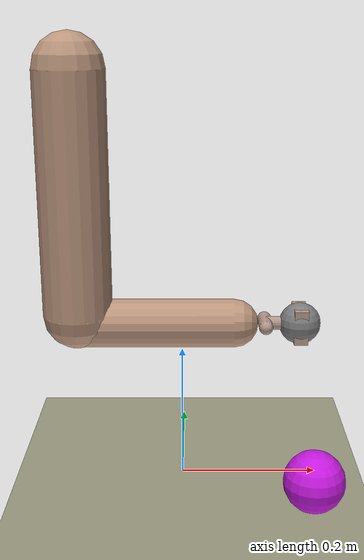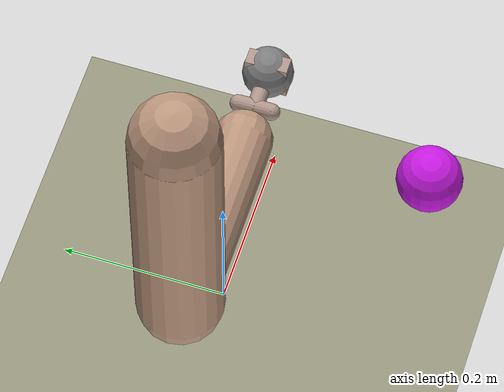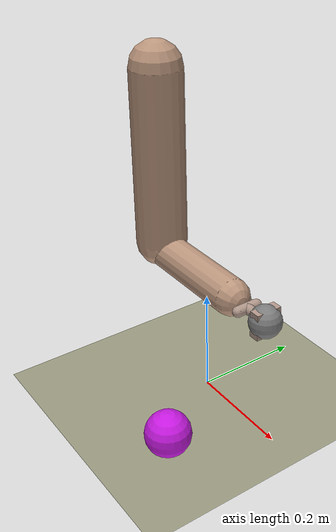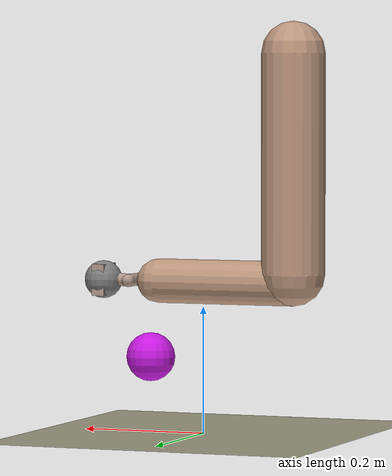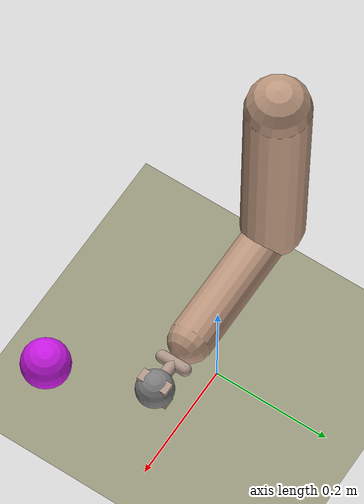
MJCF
<mujoco model="single_arm">
	<compiler 	inertiafromgeom="true"
				angle="radian"/>

	<size 	nuser_jnt="1"
			nuser_geom="1"/>

	<option	timestep="0.01"
			gravity="0 0 -9.81"
			viscosity="0"/>

	<asset>
		<material name="MatGnd" specular=".3" shininess=".3" reflectance="0.3" rgba=".5 .55 .5 1"/>
	</asset>

	<default>
		<joint limited="true" damping="1" stiffness="0" armature=".1" user="0"/>
		<geom solref="0.008 1" solimp="0.95 0.95 0.01" margin="0.001" user="0"/>
		<motor ctrllimited="true" ctrlrange="-1 1"/>
		<position ctrllimited="true"/>

		<default class='0'>
			<geom friction="1 0.005 0.001" rgba=".75 .6 .5 1" contype="1" conaffinity="0"/>
		</default>

		<default class='1'>
			<geom friction="1 0.005 0.001" rgba=".7 .6 .55 1" contype="1" conaffinity="0"/>
		</default>

		<default class='arm'>
			<joint damping="5"/>
		</default>

	</default>

	<worldbody>
		<light directional="true" cutoff="40" exponent="10" diffuse=".4 .4 .4" specular=".7 .7 .7" pos="0 0 1.5" dir="0 0 -1"/>
		<geom name="tableTop" material="MatGnd" type="plane" pos="0.15 0 0" size="0.4 0.6 0.5" rgba=".6 .6 .5 1" contype="1" conaffinity="1"/>

		<geom name="test_site" type="sphere" size="0.04" rgba="0.8 0.1 0.9 1" pos="0.17 -0.2 0.1"/>

		<!--  ================= Left Arm ================= /-->
		<body name="upperarm" pos="-0.15 0 0.6">
			<geom class="0" type="capsule" fromto="0 0 0 0 0 -0.345" size="0.05"/>
			<joint class='arm' name="s_abduction" type="hinge" pos="0 0 0" axis="1 0 0" range="-1.57 .7" user="001"/>
			<joint class='arm' name="s_flexion" type="hinge" pos="0 0 0" axis="0 -1 0" range="-.85 1.57" user="002"/>
			<joint class='arm' name="s_rotation" type="hinge" pos="0 0 0" axis="0 0 1" range="-.85 .85" user="003"/>

			<body name="forearm" pos="0 0 -0.36">
				<geom class="0" type="capsule" fromto="0 0 0 0.225 0 0" size="0.035"/>
				<joint class='arm' name="e_flexion" type="hinge" pos="0 0 0" axis="0 -1 0" range="-1.5 1.05" user="004"/>
				<joint class='arm' name="e_pronation" type="hinge" pos="0 0 0" axis="-1 0 0" range="-1.5 1.57" user="005"/>

		<!--  ================= Left Palm ================= /-->

				<body name="paddle" pos="0.27 0 0" quat="0 1 0 0">
					<site name="ee" pos="0.05 0.0 0" size="0.03" />
					<geom class="1" name="paddle_link" type="capsule" fromto="0 .0 0 0.05 0.0 0" size="0.01" />
					<geom class="1" name="paddle" type="box" pos="0.05 0.0 0" size="0.01 0.025 0.025" />

					<geom class="1" name="wrist" type="capsule" fromto="0 .02 0 0 -.02 0" size="0.01" />
					<joint name="w_abduction" type="hinge" pos="0 0 0" axis="0 0 1" range="-.5 .5" user="006"/>
					<joint name="w_flexion" type="hinge" pos="0 0 0" axis="0 -1 0" range="-1.05 1.05" user="007"/>
				</body>

			</body>

		</body>

		<!--  ================= TARGET ================= /-->

	</worldbody>

	<actuator>

		<!--  ================= Torque actuators ================= /-->

        <!--  ================= Position actuators ================= /-->

		<position joint='s_abduction' 	    name='ls_abduction' />
		<position joint='s_flexion' 		name='ls_flexion' 	/>
		<position joint='s_rotation' 		name='ls_rotation' 	/>
		<position joint='e_flexion' 		name='le_flexion' 	/>
		<position joint='e_pronation' 	    name='le_pronation' />
		<position joint='w_abduction' 	    name='lw_abduction' />
		<position joint='w_flexion' 		name='lw_flexion' 	/>

	</actuator>

</mujoco>
